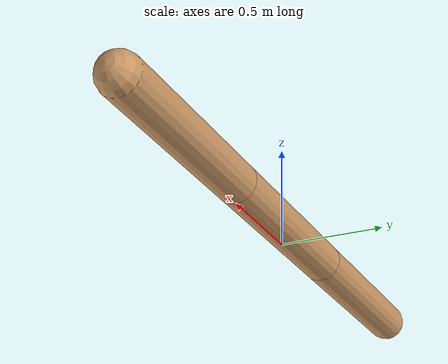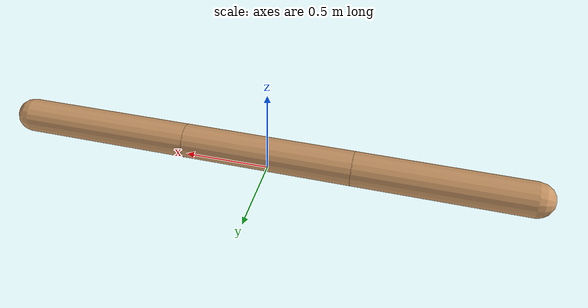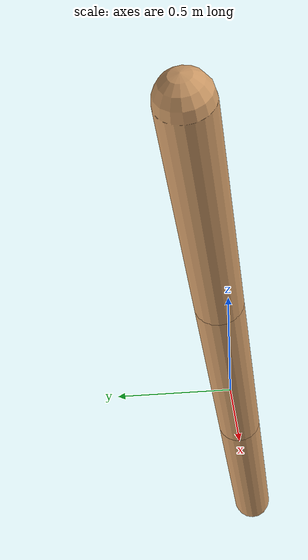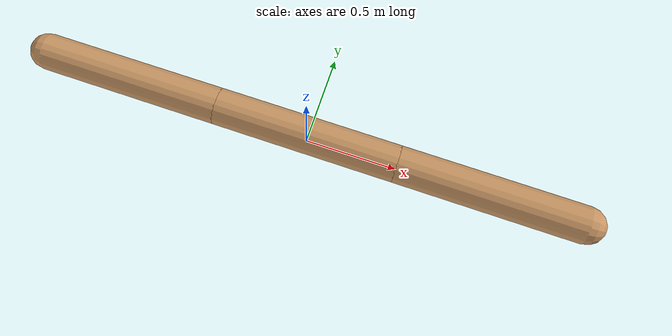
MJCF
<mujoco model="swimmer">
  <compiler angle="degree" coordinate="local" inertiafromgeom="true"/>
  <option density="4000" integrator="RK4" timestep="0.01" viscosity="0.1"/>
  <default>
    <geom conaffinity="0" condim="1" contype="0" rgba="0.8 0.6 .4 1"/>
    <joint armature='0.1'  />
  </default>
  <worldbody>
    <body name="torso" pos="0 0 0.1">
      <geom name="frontbody" density="1000" fromto="1.5 0 0 0.5 0 0" size="0.1" type="capsule"/>
      <joint axis="1 0 0" name="slider1" pos="0 0 0" type="slide"/>
      <joint axis="0 1 0" name="slider2" pos="0 0 0" type="slide"/>
      <joint axis="0 0 1" name="free_body_rot" pos="0 0 0" type="hinge"/>
      <body name="mid" pos="0.5 0 0">
        <geom density="1000" fromto="0 0 0 -1 0 0" size="0.1" type="capsule"/>
        <joint axis="0 0 1" limited="true" name="motor1_rot" pos="0 0 0" range="-100 100" type="hinge"/>
        <body name="back" pos="-1 0 0">
          <geom density="1000" fromto="0 0 0 -1 0 0" size="0.1" type="capsule"/>
          <joint axis="0 0 1" limited="true" name="motor2_rot" pos="0 0 0" range="-100 100" type="hinge"/>
        </body>
      </body>
    </body>
  </worldbody>
  <actuator>
    <motor ctrllimited="true" ctrlrange="-1 1" gear="150.0" joint="motor1_rot"/>
    <motor ctrllimited="true" ctrlrange="-1 1" gear="150.0" joint="motor2_rot"/>
  </actuator>
</mujoco>
